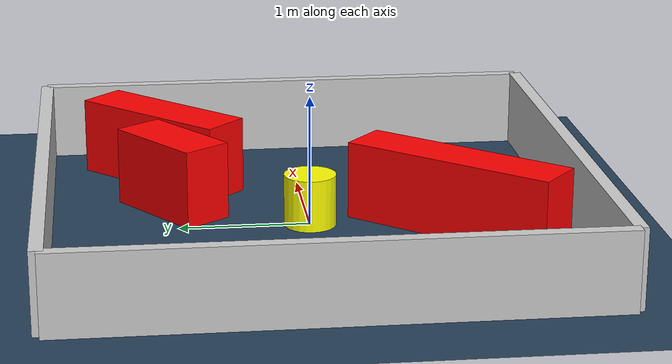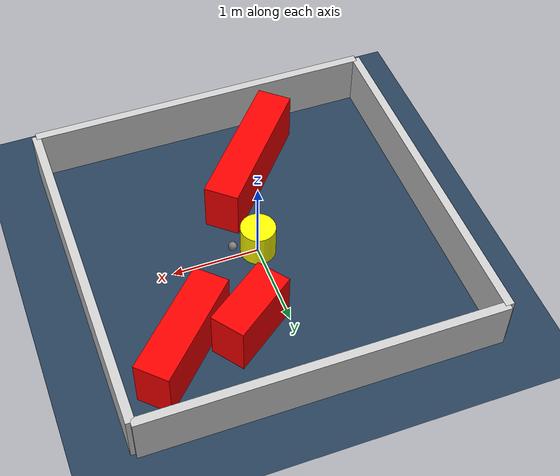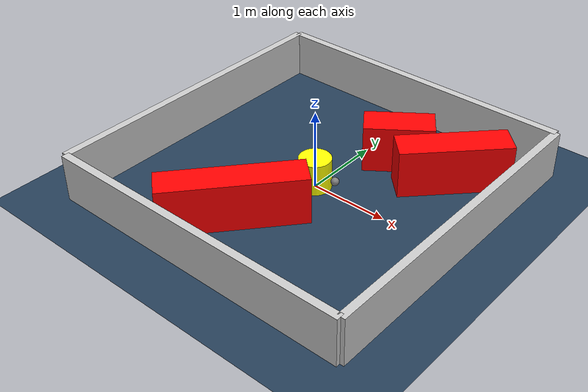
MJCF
<?xml version="1.0" ?>
<mujoco model="generated_environment">
  <option timestep="0.01" integrator="RK4" cone="elliptic"/>
  <default>
    <geom density="1"/>
  </default>
  <asset>
    <texture builtin="gradient" height="3072" rgb1="0.3 0.5 0.7" rgb2="0 0 0" type="skybox" width="512"/>
    <texture builtin="checker" height="300" mark="edge" markrgb="0.8 0.8 0.8" name="groundplane" rgb1="0.2 0.3 0.4" rgb2="0.1 0.2 0.3" type="2d" width="300"/>
    <material name="groundplane" reflectance="0.2" texrepeat="5 5" texture="groundplane" texuniform="true"/>
    <material name="robot" rgba="0.0 1.0 0.0 1"/>
  </asset>
  <worldbody>
    <light dir="0 0 -1" directional="true" pos="0 0 1.5"/>
    <geom condim="4" friction="1.0 0.005 0.001" material="groundplane" name="floor" size="0 0 0.05" type="plane"/>
    <body name="walls">
      <geom name="wall_1" condim="4" pos="-2.0 0.0 0.3" rgba="0.800000011920929 0.800000011920929 0.800000011920929 1.0" size="0.05 2.0 0.3" type="box"/>
      <geom name="wall_2" condim="4" pos="2.0 0.0 0.3" rgba="0.800000011920929 0.800000011920929 0.800000011920929 1.0" size="0.05 2.0 0.3" type="box"/>
      <geom name="wall_3" condim="4" pos="0.0 -2.0 0.3" rgba="0.800000011920929 0.800000011920929 0.800000011920929 1.0" size="2.0 0.05 0.3" type="box"/>
      <geom name="wall_4" condim="4" pos="0.0 2.0 0.3" rgba="0.800000011920929 0.800000011920929 0.800000011920929 1.0" size="2.0 0.05 0.3" type="box"/>
    </body>
    <body name="robot">
      <joint name="joint_x" type="slide" pos="0 0 0" axis="1 0 0"/>
      <joint name="joint_y" type="slide" pos="0 0 0" axis="0 1 0"/>
      <geom name="robot" type="sphere" pos="0.3 0.0 0.2" size="0.05" mass="5." friction="1.0 0.005 0.0001" condim="4" rgba="0.5 0.5 0.5 1.0"/>
      <site name="sensor_ball"/>
    </body>
    <body name="obstacle_movable_1">
      <geom name="obstacle_movable_1" condim="4" pos="0.0 0.0 0.2" euler="0 0 0.0" friction="1.0 0.005 0.001" rgba="1.0 1.0 0.0 1.0" size="0.2 0.2 0.0" type="cylinder" mass="0.1"/>
      <joint type="free"/>
    </body>
    <body name="obstacle_2_static">
      <geom name="obstacle_2_static" condim="4" pos="-0.27927694315792084 -1.0841010119289618 0.3" euler="0 0 49.192302776365025" friction="1.0 0.005 0.001" rgba="1 0 0 1" size="0.8538258093731044 0.2 0.3" type="box"/>
    </body>
    <body name="obstacle_3_static">
      <geom name="obstacle_3_static" condim="4" pos="1.1989182704891506 1.0664542456200816 0.3" euler="0 0 45.71102819803681" friction="1.0 0.005 0.001" rgba="1 0 0 1" size="0.6757645478901986 0.2 0.3" type="box"/>
    </body>
    <body name="obstacle_4_static">
      <geom name="obstacle_4_static" condim="4" pos="0.4509626459929199 1.0208131597533814 0.3" euler="0 0 216.122651151279" friction="1.0 0.005 0.001" rgba="1 0 0 1" size="0.427702221678903 0.2 0.3" type="box"/>
    </body>
  </worldbody>
  <actuator>
    <motor name="actuator_x" joint="joint_x" gear="1" ctrlrange="-1 1"/>
    <motor name="actuator_y" joint="joint_y" gear="1" ctrlrange="-1 1"/>
  </actuator>
</mujoco>
